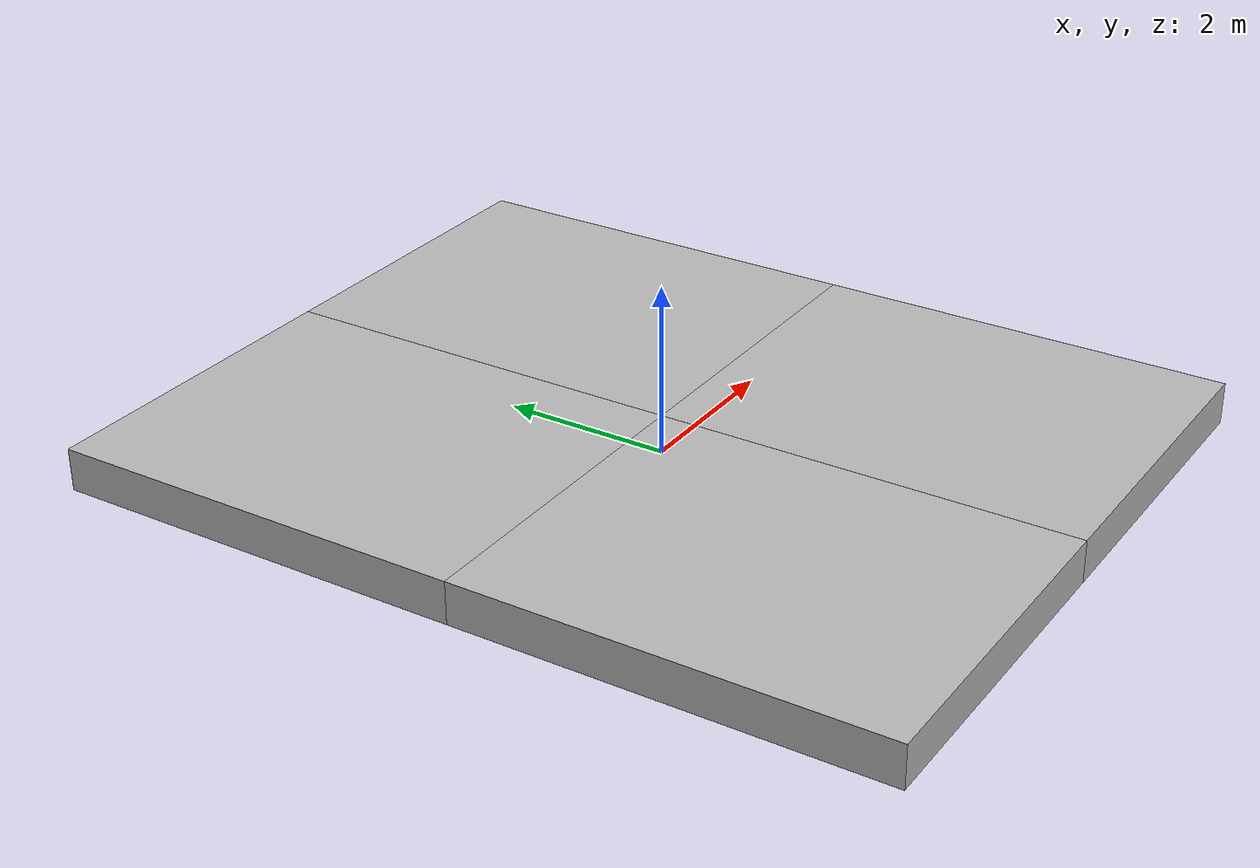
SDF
<?xml version="1.0"?>
<sdf version="1.4">

  <model name="mud_atlas_2">
    <static>true</static>
    <pose>0 0 0.2  0 0 0</pose>
    <link name="link">
      <collision name="collision">
        <geometry>
          <box>
            <size>8.0 10.0 0.5</size>
          </box>
        </geometry>
        <surface>
          <contact>
            <collide_without_contact>true</collide_without_contact>
            <collide_without_contact_bitmask>2</collide_without_contact_bitmask>
          </contact>
        </surface>
      </collision>
      <visual name="visual_1">
        <pose>-2 2.5 0 0 0 0</pose>
        <cast_shadows>false</cast_shadows>
        <geometry>
          <box>
            <size>4 5 0.5</size>
          </box>
        </geometry>
        <material>
          <script>
            <uri>model://mud_box/materials/scripts</uri>
            <uri>model://mud_box/materials/textures</uri>
            <name>vrc/mud</name>
          </script>
        </material>
      </visual>
      <visual name="visual_2">
        <pose>2 2.5 0 0 0 0</pose>
        <cast_shadows>false</cast_shadows>
        <geometry>
          <box>
            <size>4 5 0.5</size>
          </box>
        </geometry>
        <material>
          <script>
            <uri>model://mud_box/materials/scripts</uri>
            <uri>model://mud_box/materials/textures</uri>
            <name>vrc/mud</name>
          </script>
        </material>
      </visual>
      <visual name="visual_3">
        <pose>2 -2.5 0 0 0 0</pose>
        <cast_shadows>false</cast_shadows>
        <geometry>
          <box>
            <size>4 5 0.5</size>
          </box>
        </geometry>
        <material>
          <script>
            <uri>model://mud_box/materials/scripts</uri>
            <uri>model://mud_box/materials/textures</uri>
            <name>vrc/mud</name>
          </script>
        </material>
      </visual>
      <visual name="visual_4">
        <pose>-2 -2.5 0 0 0 0</pose>
        <cast_shadows>false</cast_shadows>
        <geometry>
          <box>
            <size>4 5 0.5</size>
          </box>
        </geometry>
        <material>
          <script>
            <uri>model://mud_box/materials/scripts</uri>
            <uri>model://mud_box/materials/textures</uri>
            <name>vrc/mud</name>
          </script>
        </material>
      </visual>

      <sensor name="mud_contact" type="contact">
        <always_on>true</always_on>
        <update_rate>1000</update_rate>
        <contact>
          <collision>collision</collision>
        </contact>
      </sensor>
    </link>
    <plugin name="gazebo_mud" filename="libMudPlugin.so">
      <contact_sensor_name>link/mud_contact</contact_sensor_name>
      <stiffness>0.0</stiffness>
      <damping>70.0</damping>
      <contact_surface_bitmask>2</contact_surface_bitmask>
      <link_name>atlas::l_foot</link_name>
      <link_name>atlas::r_foot</link_name>
      <link_name>atlas::l_lleg</link_name>
      <link_name>atlas::r_lleg</link_name>
    </plugin>
  </model>
</sdf>
